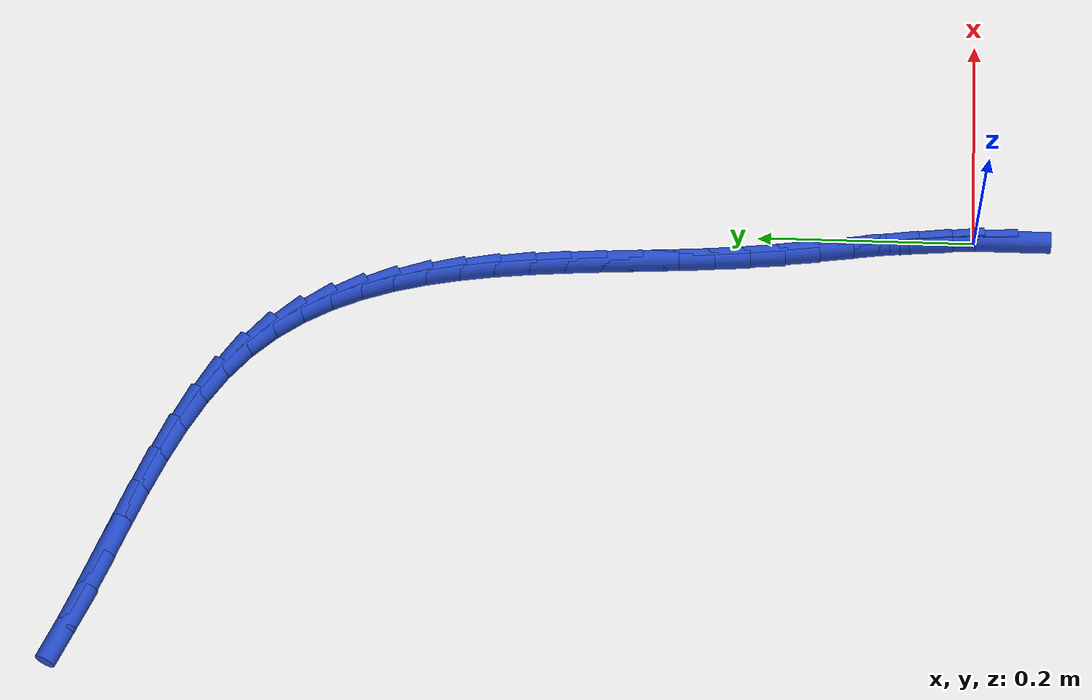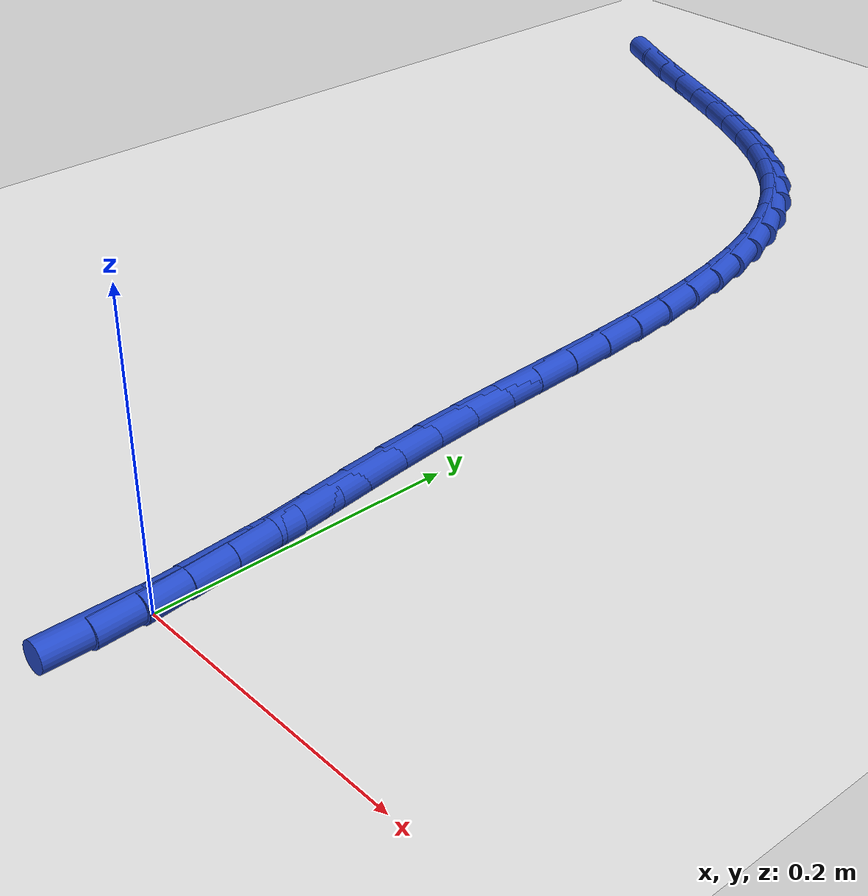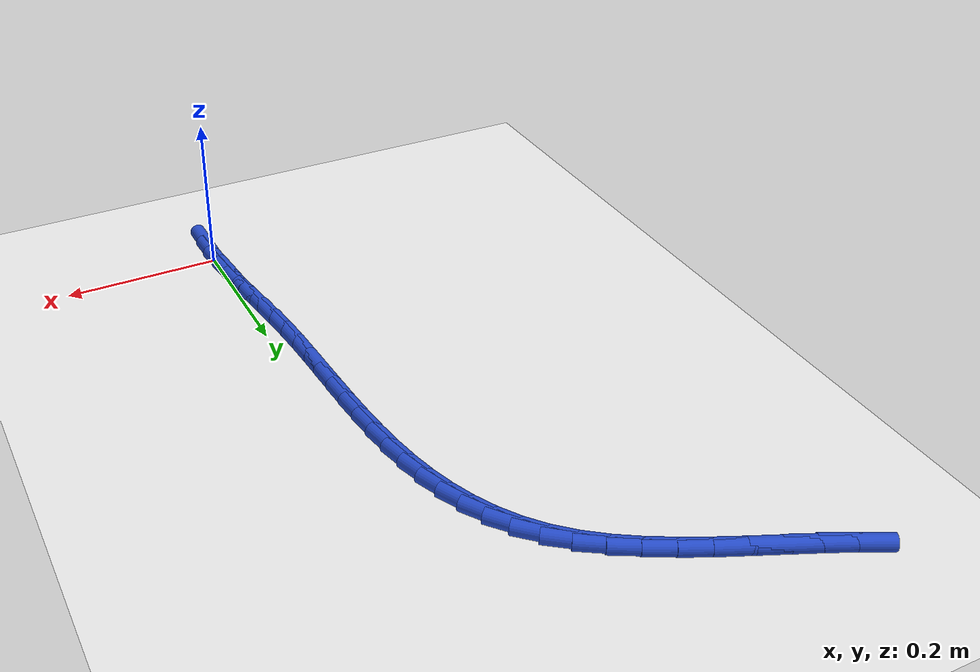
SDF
<sdf version="1.6">
 <world name="default">
  <model name="ground_plane">
   <static>1</static>
   <link name="link">
    <collision name="collision">
     <geometry><plane><normal>0 0 1</normal><size>100 100</size></plane></geometry>
     <surface><friction><ode><mu>100</mu><mu2>50</mu2></ode></friction></surface>
    </collision>
    <visual name="visual">
     <cast_shadows>0</cast_shadows>
     <geometry><plane><normal>0 0 1</normal><size>100 100</size></plane></geometry>
     <material>
      <script><uri>file://media/materials/scripts/gazebo.material</uri><name>Gazebo/WhiteGlow</name></script>
     </material>
    </visual>
   </link>
  </model>
  <model name="line">
   <link name="link_0">
    <pose>-5.204170427930421e-18 -9.020562075079397e-17 0.01 0 1.57 -1.522232286232111</pose>
    <collision name="collision">
     <geometry><cylinder><radius>0.01</radius><length>0.08</length></cylinder></geometry>
    </collision>
    <visual name="visual">
     <material>
      <script><name>Gazebo/Blue</name><uri>file://media/materials/scripts/gazebo.material</uri></script>
     </material>
     <geometry><cylinder><radius>0.01</radius><length>0.08</length></cylinder></geometry>
    </visual>
   </link>
   <link name="link_1">
    <pose>-0.0014709635503436752 0.03026533512428548 0.01 0 1.57 -1.4829222144864138</pose>
    <collision name="collision">
     <geometry><cylinder><radius>0.01</radius><length>0.08</length></cylinder></geometry>
    </collision>
    <visual name="visual">
     <material>
      <script><name>Gazebo/Blue</name><uri>file://media/materials/scripts/gazebo.material</uri></script>
     </material>
     <geometry><cylinder><radius>0.01</radius><length>0.08</length></cylinder></geometry>
    </visual>
   </link>
   <link name="link_2">
    <pose>-0.0041331256183002926 0.060482496783488236 0.01 0 1.57 -1.4553366145338897</pose>
    <collision name="collision">
     <geometry><cylinder><radius>0.01</radius><length>0.08</length></cylinder></geometry>
    </collision>
    <visual name="visual">
     <material>
      <script><name>Gazebo/Blue</name><uri>file://media/materials/scripts/gazebo.material</uri></script>
     </material>
     <geometry><cylinder><radius>0.01</radius><length>0.08</length></cylinder></geometry>
    </visual>
   </link>
   <link name="link_3">
    <pose>-0.007645029595003838 0.0907639201038073 0.01 0 1.57 -1.4395641849911678</pose>
    <collision name="collision">
     <geometry><cylinder><radius>0.01</radius><length>0.08</length></cylinder></geometry>
    </collision>
    <visual name="visual">
     <material>
      <script><name>Gazebo/Blue</name><uri>file://media/materials/scripts/gazebo.material</uri></script>
     </material>
     <geometry><cylinder><radius>0.01</radius><length>0.08</length></cylinder></geometry>
    </visual>
   </link>
   <link name="link_4">
    <pose>-0.011665218871588296 0.12122204021144181 0.01 0 1.57 -1.4354534613786312</pose>
    <collision name="collision">
     <geometry><cylinder><radius>0.01</radius><length>0.08</length></cylinder></geometry>
    </collision>
    <visual name="visual">
     <material>
      <script><name>Gazebo/Blue</name><uri>file://media/materials/scripts/gazebo.material</uri></script>
     </material>
     <geometry><cylinder><radius>0.01</radius><length>0.08</length></cylinder></geometry>
    </visual>
   </link>
   <link name="link_5">
    <pose>-0.015852236839187652 0.1519692922325908 0.01 0 1.57 -1.4426882286479765</pose>
    <collision name="collision">
     <geometry><cylinder><radius>0.01</radius><length>0.08</length></cylinder></geometry>
    </collision>
    <visual name="visual">
     <material>
      <script><name>Gazebo/Blue</name><uri>file://media/materials/scripts/gazebo.material</uri></script>
     </material>
     <geometry><cylinder><radius>0.01</radius><length>0.08</length></cylinder></geometry>
    </visual>
   </link>
   <link name="link_6">
    <pose>-0.019864626888935883 0.18311811129345346 0.01 0 1.57 -1.4608188197446967</pose>
    <collision name="collision">
     <geometry><cylinder><radius>0.01</radius><length>0.08</length></cylinder></geometry>
    </collision>
    <visual name="visual">
     <material>
      <script><name>Gazebo/Blue</name><uri>file://media/materials/scripts/gazebo.material</uri></script>
     </material>
     <geometry><cylinder><radius>0.01</radius><length>0.08</length></cylinder></geometry>
    </visual>
   </link>
   <link name="link_7">
    <pose>-0.02336093241196698 0.21478093252022884 0.01 0 1.57 -1.4860278569934808</pose>
    <collision name="collision">
     <geometry><cylinder><radius>0.01</radius><length>0.08</length></cylinder></geometry>
    </collision>
    <visual name="visual">
     <material>
      <script><name>Gazebo/Blue</name><uri>file://media/materials/scripts/gazebo.material</uri></script>
     </material>
     <geometry><cylinder><radius>0.01</radius><length>0.08</length></cylinder></geometry>
    </visual>
   </link>
   <link name="link_8">
    <pose>-0.026100668854416493 0.24702371100806944 0.01 0 1.57 -1.5050241309093437</pose>
    <collision name="collision">
     <geometry><cylinder><radius>0.01</radius><length>0.08</length></cylinder></geometry>
    </collision>
    <visual name="visual">
     <material>
      <script><name>Gazebo/Blue</name><uri>file://media/materials/scripts/gazebo.material</uri></script>
     </material>
     <geometry><cylinder><radius>0.01</radius><length>0.08</length></cylinder></geometry>
    </visual>
   </link>
   <link name="link_9">
    <pose>-0.028254489105913917 0.279723144724126 0.01 0 1.57 -1.5149742220051203</pose>
    <collision name="collision">
     <geometry><cylinder><radius>0.01</radius><length>0.08</length></cylinder></geometry>
    </collision>
    <visual name="visual">
     <material>
      <script><name>Gazebo/Blue</name><uri>file://media/materials/scripts/gazebo.material</uri></script>
     </material>
     <geometry><cylinder><radius>0.01</radius><length>0.08</length></cylinder></geometry>
    </visual>
   </link>
   <link name="link_10">
    <pose>-0.0300976751328156 0.3127077681834478 0.01 0 1.57 -1.5162304851314876</pose>
    <collision name="collision">
     <geometry><cylinder><radius>0.01</radius><length>0.08</length></cylinder></geometry>
    </collision>
    <visual name="visual">
     <material>
      <script><name>Gazebo/Blue</name><uri>file://media/materials/scripts/gazebo.material</uri></script>
     </material>
     <geometry><cylinder><radius>0.01</radius><length>0.08</length></cylinder></geometry>
    </visual>
   </link>
   <link name="link_11">
    <pose>-0.031905508922908984 0.34580611589121907 0.01 0 1.57 -1.5088983215822322</pose>
    <collision name="collision">
     <geometry><cylinder><radius>0.01</radius><length>0.08</length></cylinder></geometry>
    </collision>
    <visual name="visual">
     <material>
      <script><name>Gazebo/Blue</name><uri>file://media/materials/scripts/gazebo.material</uri></script>
     </material>
     <geometry><cylinder><radius>0.01</radius><length>0.08</length></cylinder></geometry>
    </visual>
   </link>
   <link name="link_12">
    <pose>-0.03395327246398151 0.37884672235262384 0.01 0 1.57 -1.492842274083281</pose>
    <collision name="collision">
     <geometry><cylinder><radius>0.01</radius><length>0.08</length></cylinder></geometry>
    </collision>
    <visual name="visual">
     <material>
      <script><name>Gazebo/Blue</name><uri>file://media/materials/scripts/gazebo.material</uri></script>
     </material>
     <geometry><cylinder><radius>0.01</radius><length>0.08</length></cylinder></geometry>
    </visual>
   </link>
   <link name="link_13">
    <pose>-0.03651624774382062 0.411658122072846 0.01 0 1.57 -1.4676953295509052</pose>
    <collision name="collision">
     <geometry><cylinder><radius>0.01</radius><length>0.08</length></cylinder></geometry>
    </collision>
    <visual name="visual">
     <material>
      <script><name>Gazebo/Blue</name><uri>file://media/materials/scripts/gazebo.material</uri></script>
     </material>
     <geometry><cylinder><radius>0.01</radius><length>0.08</length></cylinder></geometry>
    </visual>
   </link>
   <link name="link_14">
    <pose>-0.03986971675021375 0.44406884955706993 0.01 0 1.57 -1.4328760174805222</pose>
    <collision name="collision">
     <geometry><cylinder><radius>0.01</radius><length>0.08</length></cylinder></geometry>
    </collision>
    <visual name="visual">
     <material>
      <script><name>Gazebo/Blue</name><uri>file://media/materials/scripts/gazebo.material</uri></script>
     </material>
     <geometry><cylinder><radius>0.01</radius><length>0.08</length></cylinder></geometry>
    </visual>
   </link>
   <link name="link_15">
    <pose>-0.04428896147094834 0.4759074393104796 0.01 0 1.57 -1.3876242073058669</pose>
    <collision name="collision">
     <geometry><cylinder><radius>0.01</radius><length>0.08</length></cylinder></geometry>
    </collision>
    <visual name="visual">
     <material>
      <script><name>Gazebo/Blue</name><uri>file://media/materials/scripts/gazebo.material</uri></script>
     </material>
     <geometry><cylinder><radius>0.01</radius><length>0.08</length></cylinder></geometry>
    </visual>
   </link>
   <link name="link_16">
    <pose>-0.05004926389381184 0.5070024258382588 0.01 0 1.57 -1.3310742017901627</pose>
    <collision name="collision">
     <geometry><cylinder><radius>0.01</radius><length>0.08</length></cylinder></geometry>
    </collision>
    <visual name="visual">
     <material>
      <script><name>Gazebo/Blue</name><uri>file://media/materials/scripts/gazebo.material</uri></script>
     </material>
     <geometry><cylinder><radius>0.01</radius><length>0.08</length></cylinder></geometry>
    </visual>
   </link>
   <link name="link_17">
    <pose>-0.057425906006591684 0.5371823436455921 0.01 0 1.57 -1.2623915712042322</pose>
    <collision name="collision">
     <geometry><cylinder><radius>0.01</radius><length>0.08</length></cylinder></geometry>
    </collision>
    <visual name="visual">
     <material>
      <script><name>Gazebo/Blue</name><uri>file://media/materials/scripts/gazebo.material</uri></script>
     </material>
     <geometry><cylinder><radius>0.01</radius><length>0.08</length></cylinder></geometry>
    </visual>
   </link>
   <link name="link_18">
    <pose>-0.06669416979707532 0.5662757272376634 0.01 0 1.57 -1.1810023733725474</pose>
    <collision name="collision">
     <geometry><cylinder><radius>0.01</radius><length>0.08</length></cylinder></geometry>
    </collision>
    <visual name="visual">
     <material>
      <script><name>Gazebo/Blue</name><uri>file://media/materials/scripts/gazebo.material</uri></script>
     </material>
     <geometry><cylinder><radius>0.01</radius><length>0.08</length></cylinder></geometry>
    </visual>
   </link>
   <link name="link_19">
    <pose>-0.07812933725305014 0.5941111111196565 0.01 0 1.57 -1.0869264948212116</pose>
    <collision name="collision">
     <geometry><cylinder><radius>0.01</radius><length>0.08</length></cylinder></geometry>
    </collision>
    <visual name="visual">
     <material>
      <script><name>Gazebo/Blue</name><uri>file://media/materials/scripts/gazebo.material</uri></script>
     </material>
     <geometry><cylinder><radius>0.01</radius><length>0.08</length></cylinder></geometry>
    </visual>
   </link>
   <link name="link_20">
    <pose>-0.09200669036230372 0.620517029796756 0.01 0 1.57 -0.9811721742202635</pose>
    <collision name="collision">
     <geometry><cylinder><radius>0.01</radius><length>0.08</length></cylinder></geometry>
    </collision>
    <visual name="visual">
     <material>
      <script><name>Gazebo/Blue</name><uri>file://media/materials/scripts/gazebo.material</uri></script>
     </material>
     <geometry><cylinder><radius>0.01</radius><length>0.08</length></cylinder></geometry>
    </visual>
   </link>
   <link name="link_21">
    <pose>-0.1086015111126234 0.6453220177741456 0.01 0 1.57 -0.8660536017765166</pose>
    <collision name="collision">
     <geometry><cylinder><radius>0.01</radius><length>0.08</length></cylinder></geometry>
    </collision>
    <visual name="visual">
     <material>
      <script><name>Gazebo/Blue</name><uri>file://media/materials/scripts/gazebo.material</uri></script>
     </material>
     <geometry><cylinder><radius>0.01</radius><length>0.08</length></cylinder></geometry>
    </visual>
   </link>
   <link name="link_22">
    <pose>-0.12818908149179659 0.6683546095570096 0.01 0 1.57 -0.7456979805366303</pose>
    <collision name="collision">
     <geometry><cylinder><radius>0.01</radius><length>0.08</length></cylinder></geometry>
    </collision>
    <visual name="visual">
     <material>
      <script><name>Gazebo/Blue</name><uri>file://media/materials/scripts/gazebo.material</uri></script>
     </material>
     <geometry><cylinder><radius>0.01</radius><length>0.08</length></cylinder></geometry>
    </visual>
   </link>
   <link name="link_23">
    <pose>-0.15103085002731698 0.6894511040095049 0.01 0 1.57 -0.636858438763827</pose>
    <collision name="collision">
     <geometry><cylinder><radius>0.01</radius><length>0.08</length></cylinder></geometry>
    </collision>
    <visual name="visual">
     <material>
      <script><name>Gazebo/Blue</name><uri>file://media/materials/scripts/gazebo.material</uri></script>
     </material>
     <geometry><cylinder><radius>0.01</radius><length>0.08</length></cylinder></geometry>
    </visual>
   </link>
   <link name="link_24">
    <pose>-0.1770045833075591 0.7086631506198284 0.01 0 1.57 -0.5527267282956707</pose>
    <collision name="collision">
     <geometry><cylinder><radius>0.01</radius><length>0.08</length></cylinder></geometry>
    </collision>
    <visual name="visual">
     <material>
      <script><name>Gazebo/Blue</name><uri>file://media/materials/scripts/gazebo.material</uri></script>
     </material>
     <geometry><cylinder><radius>0.01</radius><length>0.08</length></cylinder></geometry>
    </visual>
   </link>
   <link name="link_25">
    <pose>-0.20556400163948071 0.7262804049484294 0.01 0 1.57 -0.4903837553311104</pose>
    <collision name="collision">
     <geometry><cylinder><radius>0.01</radius><length>0.08</length></cylinder></geometry>
    </collision>
    <visual name="visual">
     <material>
      <script><name>Gazebo/Blue</name><uri>file://media/materials/scripts/gazebo.material</uri></script>
     </material>
     <geometry><cylinder><radius>0.01</radius><length>0.08</length></cylinder></geometry>
    </visual>
   </link>
   <link name="link_26">
    <pose>-0.23614089367152463 0.7426048322213057 0.01 0 1.57 -0.4465300705286888</pose>
    <collision name="collision">
     <geometry><cylinder><radius>0.01</radius><length>0.08</length></cylinder></geometry>
    </collision>
    <visual name="visual">
     <material>
      <script><name>Gazebo/Blue</name><uri>file://media/materials/scripts/gazebo.material</uri></script>
     </material>
     <geometry><cylinder><radius>0.01</radius><length>0.08</length></cylinder></geometry>
    </visual>
   </link>
   <link name="link_27">
    <pose>-0.26816704805213387 0.7579383976644556 0.01 0 1.57 -0.41871256408939855</pose>
    <collision name="collision">
     <geometry><cylinder><radius>0.01</radius><length>0.08</length></cylinder></geometry>
    </collision>
    <visual name="visual">
     <material>
      <script><name>Gazebo/Blue</name><uri>file://media/materials/scripts/gazebo.material</uri></script>
     </material>
     <geometry><cylinder><radius>0.01</radius><length>0.08</length></cylinder></geometry>
    </visual>
   </link>
   <link name="link_28">
    <pose>-0.3010742534297513 0.7725830665038765 0.01 0 1.57 -0.4054149249436557</pose>
    <collision name="collision">
     <geometry><cylinder><radius>0.01</radius><length>0.08</length></cylinder></geometry>
    </collision>
    <visual name="visual">
     <material>
      <script><name>Gazebo/Blue</name><uri>file://media/materials/scripts/gazebo.material</uri></script>
     </material>
     <geometry><cylinder><radius>0.01</radius><length>0.08</length></cylinder></geometry>
    </visual>
   </link>
   <link name="link_29">
    <pose>-0.33429429845282 0.7868408039655669 0.01 0 1.57 -0.40604587525706</pose>
    <collision name="collision">
     <geometry><cylinder><radius>0.01</radius><length>0.08</length></cylinder></geometry>
    </collision>
    <visual name="visual">
     <material>
      <script><name>Gazebo/Blue</name><uri>file://media/materials/scripts/gazebo.material</uri></script>
     </material>
     <geometry><cylinder><radius>0.01</radius><length>0.08</length></cylinder></geometry>
    </visual>
   </link>
   <link name="link_30">
    <pose>-0.36725897176978245 0.8010135752755241 0.01 0 1.57 -0.42094489326217294</pose>
    <collision name="collision">
     <geometry><cylinder><radius>0.01</radius><length>0.08</length></cylinder></geometry>
    </collision>
    <visual name="visual">
     <material>
      <script><name>Gazebo/Blue</name><uri>file://media/materials/scripts/gazebo.material</uri></script>
     </material>
     <geometry><cylinder><radius>0.01</radius><length>0.08</length></cylinder></geometry>
    </visual>
   </link>
   <link name="link_31">
    <pose>-0.39940006202908185 0.8154033456597461 0.01 0 1.57 -0.4514527013615953</pose>
    <collision name="collision">
     <geometry><cylinder><radius>0.01</radius><length>0.08</length></cylinder></geometry>
    </collision>
    <visual name="visual">
     <material>
      <script><name>Gazebo/Blue</name><uri>file://media/materials/scripts/gazebo.material</uri></script>
     </material>
     <geometry><cylinder><radius>0.01</radius><length>0.08</length></cylinder></geometry>
    </visual>
   </link>
   <link name="link_289">
    <pose>2.1096401534405514e-05 -0.030403019050528085 0.01 0 1.57 -1.5701024352404598</pose>
    <collision name="collision">
     <geometry><cylinder><radius>0.01</radius><length>0.08</length></cylinder></geometry>
    </collision>
    <visual name="visual">
     <material>
      <script><name>Gazebo/Blue</name><uri>file://media/materials/scripts/gazebo.material</uri></script>
     </material>
     <geometry><cylinder><radius>0.01</radius><length>0.08</length></cylinder></geometry>
    </visual>
   </link>
   <link name="link_290">
    <pose>-7.806255641895632e-18 -1.942890293094024e-16 0.01 0 1.57 -1.5194648821190782</pose>
    <collision name="collision">
     <geometry><cylinder><radius>0.01</radius><length>0.08</length></cylinder></geometry>
    </collision>
    <visual name="visual">
     <material>
      <script><name>Gazebo/Blue</name><uri>file://media/materials/scripts/gazebo.material</uri></script>
     </material>
     <geometry><cylinder><radius>0.01</radius><length>0.08</length></cylinder></geometry>
    </visual>
   </link>
   <link name="link_291">
    <pose>-0.0015537515280133179 0.030242410459244817 0.01 0 1.57 -1.463359484435974</pose>
    <collision name="collision">
     <geometry><cylinder><radius>0.01</radius><length>0.08</length></cylinder></geometry>
    </collision>
    <visual name="visual">
     <material>
      <script><name>Gazebo/Blue</name><uri>file://media/materials/scripts/gazebo.material</uri></script>
     </material>
     <geometry><cylinder><radius>0.01</radius><length>0.08</length></cylinder></geometry>
    </visual>
   </link>
   <link name="link_292">
    <pose>-0.004795429439658039 0.060299099463171274 0.01 0 1.57 -1.491435972450716</pose>
    <collision name="collision">
     <geometry><cylinder><radius>0.01</radius><length>0.08</length></cylinder></geometry>
    </collision>
    <visual name="visual">
     <material>
      <script><name>Gazebo/Blue</name><uri>file://media/materials/scripts/gazebo.material</uri></script>
     </material>
     <geometry><cylinder><radius>0.01</radius><length>0.08</length></cylinder></geometry>
    </visual>
   </link>
  </model>
 </world>
</sdf>
